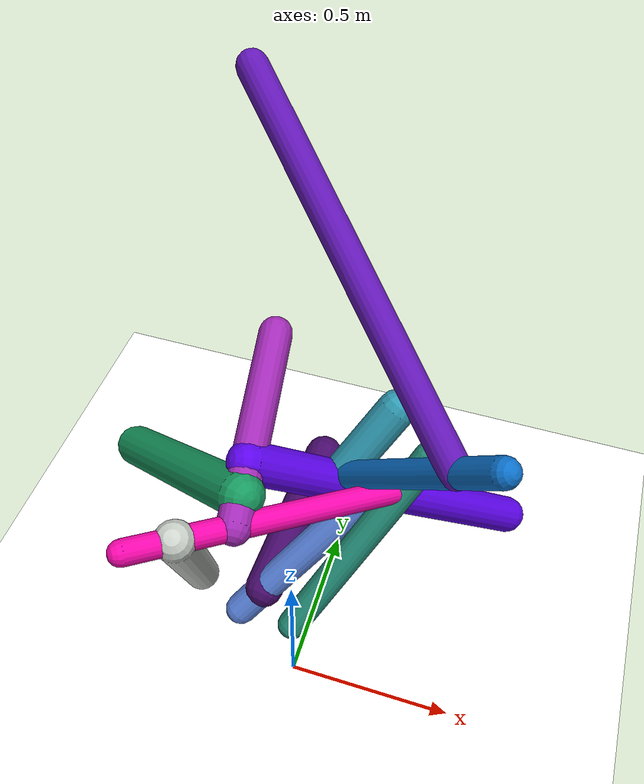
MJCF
<mujoco model="morphology">
  <option timestep="0.01"/>
  <default>
    <default class="/"/>
    <default class="0/"/>
    <default class="0/1/"/>
    <default class="0/1/2/"/>
    <default class="0/1/2/3/"/>
    <default class="0/1/2/4/"/>
    <default class="0/1/2/4/5/"/>
    <default class="0/1/2/4/5/6/"/>
    <default class="0/1/2/4/5/6/7/"/>
    <default class="0/1/2/4/8/"/>
    <default class="0/1/2/4/8/9/"/>
    <default class="0/1/10/"/>
  </default>
  <asset>
    <texture name="texplane" type="2d" builtin="checker" rgb1="0.10000000000000001 0.20000000000000001 0.29999999999999999" rgb2="0.20000000000000001 0.29999999999999999 0.40000000000000002" width="300" height="300"/>
    <material name="MatPlane" class="/" texture="texplane" texrepeat="20 20" specular="1" shininess="1" reflectance="0.5"/>
  </asset>
  <worldbody>
    <light name="//unnamed_light_0" class="/" directional="true" pos="0 0 1.5" dir="0 0 -1.3" cutoff="100" exponent="1" diffuse="1 1 1" specular="0.10000000000000001 0.10000000000000001 0.10000000000000001"/>
    <geom name="ground" class="/" type="plane" size="15 15 0.5" material="MatPlane" rgba="1 1 1 1"/>
    <site name="body" class="/" size="9.9999999999999995e-07 9.9999999999999995e-07 9.9999999999999995e-07" pos="0 0 0.29407626986503599"/>
    <body pos="0 0 0.29407626986503599" name="0/">
      <freejoint name="0/"/>
      <geom name="0/geom" class="0/" type="capsule" contype="1" conaffinity="1" condim="3" size="0.04330735740609435" rgba="0.14368966379440085 0.56905186983533862 0.48336704451146661 1" friction="0.59999999999999998 0.10000000000000001 0.10000000000000001" fromto="0 0 0 0.28471454924597506 0.33575576481181901 0.51777164248694429"/>
      <site name="0/end0" class="0/" size="0.0050000000000000001" pos="0.28471454924597506 0.33575576481181901 0.51777164248694429"/>
      <site name="0/attach1" class="0/" size="9.9999999999999995e-07 9.9999999999999995e-07 9.9999999999999995e-07" pos="0.23259878987145968 0.27429713302120462 0.42299579628498329"/>
      <body pos="0.23259878987145968 0.27429713302120462 0.42299579628498329" name="0/1/">
        <joint name="0/1/joint/" class="0/" type="hinge" axis="0 1 0" limited="true" range="-61.699018965884008 61.699018965884008"/>
        <geom name="0/1/geom" class="0/1/" type="capsule" contype="1" conaffinity="1" condim="3" size="0.035017829551271737" rgba="0.95980345451628502 0.023885986697887995 0.66619609179637151 1" friction="0.59999999999999998 0.10000000000000001 0.10000000000000001" fromto="0 0 0 -0.58209711838518308 -0.49578838773365119 0.14974709043697199"/>
        <site name="0/1/end1" class="0/1/" size="0.0050000000000000001" pos="-0.58209711838518308 -0.49578838773365119 0.14974709043697199"/>
        <site name="0/1/attach2" class="0/1/" size="9.9999999999999995e-07 9.9999999999999995e-07 9.9999999999999995e-07" pos="-0.36706731195489845 -0.3126414906308127 0.094429709791818042"/>
        <body pos="-0.36706731195489845 -0.3126414906308127 0.094429709791818042" name="0/1/2/">
          <geom name="0/1/2/geom" class="0/1/2/" type="capsule" contype="1" conaffinity="1" condim="3" size="0.047743998019009373" rgba="0.62537310220660802 0.16203889750968425 0.70371003741018023 1" friction="0.59999999999999998 0.10000000000000001 0.10000000000000001" fromto="0 0 0 -0.078093677415694396 0.55107849960308863 0.1417202689307997"/>
          <site name="0/1/2/end2" class="0/1/2/" size="0.0050000000000000001" pos="-0.078093677415694396 0.55107849960308863 0.1417202689307997"/>
          <site name="0/1/2/attach3" class="0/1/2/" size="9.9999999999999995e-07 9.9999999999999995e-07 9.9999999999999995e-07" pos="-0.01197063987534861 0.08447242440231495 0.021723683127095501"/>
          <body pos="-0.01197063987534861 0.08447242440231495 0.021723683127095501" name="0/1/2/3/">
            <joint name="0/1/2/3/joint/" class="0/1/2/" type="hinge" axis="-0.99071291800998285 -0.13168541649007254 -0.033865397856528631" limited="true" range="-66.338031604747059 66.338031604747059"/>
            <geom name="0/1/2/3/geom" class="0/1/2/3/" type="capsule" contype="1" conaffinity="1" condim="3" size="0.064003585776130703" rgba="0.087961505414838159 0.59372724994963078 0.3680249043622873 1" friction="0.59999999999999998 0.10000000000000001 0.10000000000000001" fromto="0 0 0 -0.50999711082466082 0.33709952246050645 -0.40510110497105234"/>
            <site name="0/1/2/3/end3" class="0/1/2/3/" size="0.0050000000000000001" pos="-0.50999711082466082 0.33709952246050645 -0.40510110497105234"/>
          </body>
          <site name="0/1/2/attach4" class="0/1/2/" size="9.9999999999999995e-07 9.9999999999999995e-07 9.9999999999999995e-07" pos="-0.024375971134155718 0.17201230680269006 0.044236221150058146"/>
          <body pos="-0.024375971134155718 0.17201230680269006 0.044236221150058146" name="0/1/2/4/">
            <geom name="0/1/2/4/geom" class="0/1/2/4/" type="capsule" contype="1" conaffinity="1" condim="3" size="0.058949257716469972" rgba="0.3567894722429622 0.0086009751462421402 0.90492209956672809 1" friction="0.59999999999999998 0.10000000000000001 0.10000000000000001" fromto="0 0 0 0.69368552376792669 0.49360948903933277 -0.62390825777762793"/>
            <site name="0/1/2/4/end4" class="0/1/2/4/" size="0.0050000000000000001" pos="0.69368552376792669 0.49360948903933277 -0.62390825777762793"/>
            <site name="0/1/2/4/attach5" class="0/1/2/4/" size="9.9999999999999995e-07 9.9999999999999995e-07 9.9999999999999995e-07" pos="0.199279190130425 0.14180215075291036 -0.17923385751265225"/>
            <body pos="0.199279190130425 0.14180215075291036 -0.17923385751265225" name="0/1/2/4/5/">
              <joint name="0/1/2/4/5/joint/" class="0/1/2/4/" type="hinge" axis="-0.75371523241541949 0.40776524073733328 -0.51540358639748995" limited="true" range="-58.579041200384864 58.579041200384864"/>
              <geom name="0/1/2/4/5/geom" class="0/1/2/4/5/" type="capsule" contype="1" conaffinity="1" condim="3" size="0.053944216208497833" rgba="0.18156666338860072 0.59579580843806801 0.68929761613209373 1" friction="0.59999999999999998 0.10000000000000001 0.10000000000000001" fromto="0 0 0 0.12663732436556874 0.13644246702160823 0.20179109357653391"/>
              <site name="0/1/2/4/5/end5" class="0/1/2/4/5/" size="0.0050000000000000001" pos="0.12663732436556874 0.13644246702160823 0.20179109357653391"/>
              <site name="0/1/2/4/5/attach6" class="0/1/2/4/5/" size="9.9999999999999995e-07 9.9999999999999995e-07 9.9999999999999995e-07" pos="0.010236454821487226 0.011029032367796116 0.016311347567734232"/>
              <body pos="0.010236454821487226 0.011029032367796116 0.016311347567734232" name="0/1/2/4/5/6/">
                <geom name="0/1/2/4/5/6/geom" class="0/1/2/4/5/6/" type="capsule" contype="1" conaffinity="1" condim="3" size="0.039701140620069929" rgba="0.046376407422042298 0.43463850401694526 0.77944195548617223 1" friction="0.59999999999999998 0.10000000000000001 0.10000000000000001" fromto="0 0 0 0.41927809424159657 -0.20772318432261616 0.45171412210257689"/>
                <site name="0/1/2/4/5/6/end6" class="0/1/2/4/5/6/" size="0.0050000000000000001" pos="0.41927809424159657 -0.20772318432261616 0.45171412210257689"/>
                <site name="0/1/2/4/5/6/attach7" class="0/1/2/4/5/6/" size="9.9999999999999995e-07 9.9999999999999995e-07 9.9999999999999995e-07" pos="0.31768484457340157 -0.15739078294845829 0.34226145520752743"/>
                <body pos="0.31768484457340157 -0.15739078294845829 0.34226145520752743" name="0/1/2/4/5/6/7/">
                  <joint name="0/1/2/4/5/6/7/joint/" class="0/1/2/4/5/6/" type="hinge" axis="0.76446056188626299 0.26934151832594488 -0.58570913927171531" limited="true" range="-61.565326955837257 61.565326955837257"/>
                  <geom name="0/1/2/4/5/6/7/geom" class="0/1/2/4/5/6/7/" type="capsule" contype="1" conaffinity="1" condim="3" size="0.042182447454694058" rgba="0.37853721781557581 0.085401278483897669 0.70364669297041837 1" friction="0.59999999999999998 0.10000000000000001 0.10000000000000001" fromto="0 0 0 -0.71377064788253963 0.64360512663429459 0.54732615597692957"/>
                  <site name="0/1/2/4/5/6/7/end7" class="0/1/2/4/5/6/7/" size="0.0050000000000000001" pos="-0.71377064788253963 0.64360512663429459 0.54732615597692957"/>
                </body>
              </body>
            </body>
            <site name="0/1/2/4/attach8" class="0/1/2/4/" size="9.9999999999999995e-07 9.9999999999999995e-07 9.9999999999999995e-07" pos="0.3015394868745051 0.21456805272918245 -0.27120787368480892"/>
            <body pos="0.3015394868745051 0.21456805272918245 -0.27120787368480892" name="0/1/2/4/8/">
              <geom name="0/1/2/4/8/geom" class="0/1/2/4/8/" type="capsule" contype="1" conaffinity="1" condim="3" size="0.050080329270463637" rgba="0.37357005405665666 0.53983711076515084 0.90568402892177646 1" friction="0.59999999999999998 0.10000000000000001 0.10000000000000001" fromto="0 0 0 -0.35083741088180476 -0.25331945865857969 -0.4845301278637732"/>
              <site name="0/1/2/4/8/end8" class="0/1/2/4/8/" size="0.0050000000000000001" pos="-0.35083741088180476 -0.25331945865857969 -0.4845301278637732"/>
              <site name="0/1/2/4/8/attach9" class="0/1/2/4/8/" size="9.9999999999999995e-07 9.9999999999999995e-07 9.9999999999999995e-07" pos="-0.28597394591320863 -0.206485291825385 -0.39494930780262733"/>
              <body pos="-0.28597394591320863 -0.206485291825385 -0.39494930780262733" name="0/1/2/4/8/9/">
                <joint name="0/1/2/4/8/9/joint/" class="0/1/2/4/8/" type="hinge" axis="5.5511151231257827e-17 -0.88619364476914586 0.46331503749692432" limited="true" range="-48.470449313716117 48.470449313716117"/>
                <geom name="0/1/2/4/8/9/geom" class="0/1/2/4/8/9/" type="capsule" contype="1" conaffinity="1" condim="3" size="0.060897881560869283" rgba="0.27092812688987833 0.038788951700879593 0.41089376131793143 1" friction="0.59999999999999998 0.10000000000000001 0.10000000000000001" fromto="0 0 0 0.05792944342760209 0.44291771810916036 0.1716686328072472"/>
                <site name="0/1/2/4/8/9/end9" class="0/1/2/4/8/9/" size="0.0050000000000000001" pos="0.05792944342760209 0.44291771810916036 0.1716686328072472"/>
              </body>
            </body>
          </body>
        </body>
        <site name="0/1/attach10" class="0/1/" size="9.9999999999999995e-07 9.9999999999999995e-07 9.9999999999999995e-07" pos="-0.48298337282371756 -0.41137044000272638 0.12424963554265206"/>
        <body pos="-0.48298337282371756 -0.41137044000272638 0.12424963554265206" name="0/1/10/">
          <joint name="0/1/10/joint/" class="0/1/" type="hinge" axis="0.66471500943822603 -0.71518668973045796 0.21601378442110777" limited="true" range="-39.004640257324333 39.004640257324333"/>
          <geom name="0/1/10/geom" class="0/1/10/" type="capsule" contype="1" conaffinity="1" condim="3" size="0.054588458310363561" rgba="0.77906307495802152 0.80354544815097551 0.77828350252665313 1" friction="0.59999999999999998 0.10000000000000001 0.10000000000000001" fromto="0 0 0 -0.10738662927476417 0.2795436116762231 -0.67107014437741552"/>
          <site name="0/1/10/end10" class="0/1/10/" size="0.0050000000000000001" pos="-0.10738662927476417 0.2795436116762231 -0.67107014437741552"/>
        </body>
      </body>
      <camera name="0/iso" class="0/" mode="trackcom" pos="-2.2999999999999998 -2.2999999999999998 1" xyaxes="0.45000000000000001 -0.45000000000000001 0 0.29999999999999999 0.14999999999999999 0.93999999999999995"/>
    </body>
  </worldbody>
  <actuator>
    <motor name="0/1/motor" class="0/1/" ctrllimited="true" ctrlrange="-1 1" gear="82" joint="0/1/joint/"/>
    <motor name="0/1/2/3/motor" class="0/1/2/3/" ctrllimited="true" ctrlrange="-1 1" gear="60" joint="0/1/2/3/joint/"/>
    <motor name="0/1/2/4/5/motor" class="0/1/2/4/5/" ctrllimited="true" ctrlrange="-1 1" gear="65" joint="0/1/2/4/5/joint/"/>
    <motor name="0/1/2/4/5/6/7/motor" class="0/1/2/4/5/6/7/" ctrllimited="true" ctrlrange="-1 1" gear="95" joint="0/1/2/4/5/6/7/joint/"/>
    <motor name="0/1/2/4/8/9/motor" class="0/1/2/4/8/9/" ctrllimited="true" ctrlrange="-1 1" gear="99" joint="0/1/2/4/8/9/joint/"/>
    <motor name="0/1/10/motor" class="0/1/10/" ctrllimited="true" ctrlrange="-1 1" gear="54" joint="0/1/10/joint/"/>
  </actuator>
  <sensor>
    <subtreelinvel name="velocity" body="0/"/>
  </sensor>
</mujoco>
